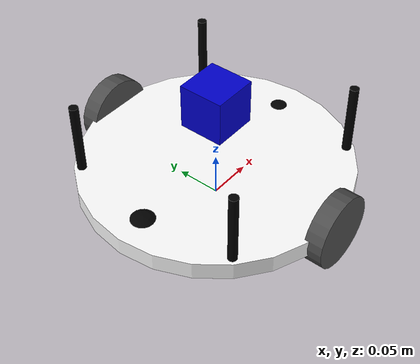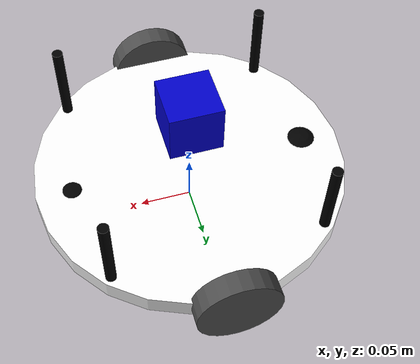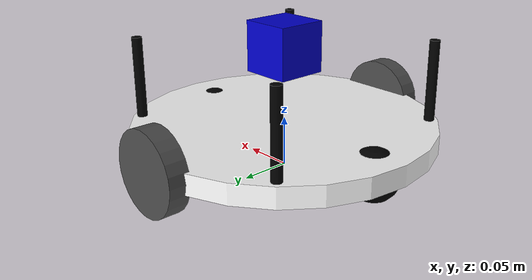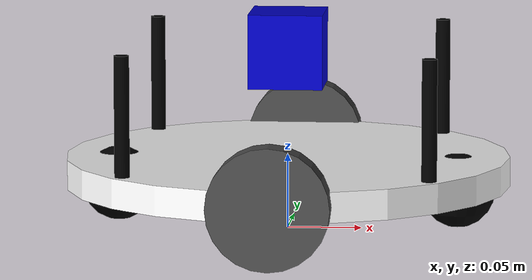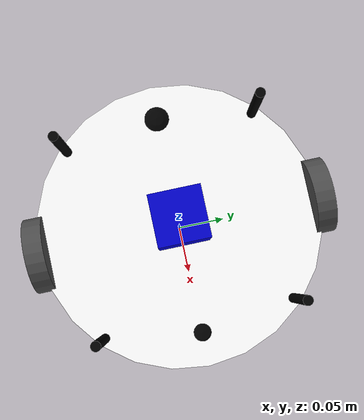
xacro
<?xml version="1.0"?>

<robot name="differential_wheeled_robot"
  xmlns:xacro="http://ros.org/wiki/xacro">

  <xacro:include filename="$(find mastering_ros_robot_description_pkg)/urdf/wheel.urdf.xacro" />

  <!-- Defining the colors used in this robot -->
  <material name="Black">
    <color rgba="0.0 0.0 0.0 1.0"/>
  </material>

  <material name="Red">
    <color rgba="0.8 0.0 0.0 1.0"/>
  </material>

  <material name="White">
    <color rgba="1.0 1.0 1.0 1.0"/>
  </material>

  <material name="Blue">
    <color rgba="0.0 0.0 0.8 1.0"/>
  </material>

  <!-- PROPERTY LIST -->
  <!--All units in m-kg-s-radians unit system -->
  <xacro:property name="M_PI" value="3.1415926535897931" />
  <xacro:property name="M_PI_2" value="1.570796327" />
  <xacro:property name="DEG_TO_RAD" value="0.017453293" />

  <!-- Main body radius and height -->
  <!-- Main Body Cylinder base   -->
  <xacro:property name="base_height" value="0.02" />
  <xacro:property name="base_radius" value="0.15" />
  <xacro:property name="base_mass" value="5.0" />
  <!-- in kg-->

  <!-- caster wheel radius and height -->
  <!-- caster wheel mass -->
  <xacro:property name="caster_f_height" value="0.04" />
  <xacro:property name="caster_f_radius" value="0.025" />
  <xacro:property name="caster_f_mass" value="0.5" />

  <!-- caster wheel radius and height -->
  <!-- caster wheel mass -->
  <xacro:property name="caster_b_height" value="0.04" />
  <xacro:property name="caster_b_radius" value="0.025" />
  <xacro:property name="caster_b_mass" value="0.5" />
  <!-- in kg-->

  <!-- Wheels -->
  <xacro:property name="wheel_mass" value="2.5" />
 -->  <!-- in kg-->
  <xacro:property name="base_x_origin_to_wheel_origin" value="0.25" />
  <xacro:property name="base_y_origin_to_wheel_origin" value="0.3" />
  <xacro:property name="base_z_origin_to_wheel_origin" value="0.0" />

  <!-- Hokuyo Laser scanner -->
  <xacro:property name="hokuyo_size" value="0.05" />

  <!-- 기둥 관련 : 기둥 위치: base_radius-0.02, 기둥 높이: 0.08m, 기둥 반지름: 0.005m -->
  <xacro:property name="pillar_radius" value="0.005" />
  <xacro:property name="pillar_height" value="0.08" />
  <xacro:property name="pillar_offset" value="0.10" />
  <xacro:property name="pillar_mass" value="0.1" />

  <!-- 기둥의 매크로 정의 -->
<xacro:macro name="pillar" params="name x y">
    <link name="${name}">
        <visual>
            <origin xyz="0 0 ${pillar_height/2}" rpy="0 0 0"/>
            <geometry>
                <cylinder length="${pillar_height}" radius="${pillar_radius}"/>
            </geometry>
            <material name="Black"/>
        </visual>
        <collision>
            <origin xyz="0 0 ${pillar_height/2}" rpy="0 0 0"/>
            <geometry>
                <cylinder length="${pillar_height}" radius="${pillar_radius}"/>
            </geometry>
        </collision>
        <inertial>
            <mass value="${pillar_mass}"/>
            <origin xyz="0 0 ${pillar_height/2}"/>
            <inertia ixx="0.001" ixy="0.0" ixz="0.0"
                     iyy="0.0001" iyz="0.0" izz="0.0001"/>
        </inertial>
    </link>
    <joint name="${name}_joint" type="fixed">
        <parent link="base_link"/>
        <child link="${name}"/>
        <origin xyz="${x} ${y} ${base_height/2}" rpy="0 0 0"/>
    </joint>
    <gazebo reference="${name}">
        <material>Gazebo/Black</material>
    </gazebo>
</xacro:macro>

<!-- 기둥 4개 배치(사각형 모서리) -->
<xacro:pillar name="pillar_fl" x=" 0.1"  y=" 0.1"/>  <!-- 앞왼쪽 -->
<xacro:pillar name="pillar_fr" x=" 0.1"  y="-0.1"/>  <!-- 앞오른쪽 -->
<xacro:pillar name="pillar_bl" x="-0.1"  y=" 0.1"/>  <!-- 뒤왼쪽 -->
<xacro:pillar name="pillar_br" x="-0.1"  y="-0.1"/>  <!-- 뒤오른쪽 -->

<!-- Macro for calculating inertia of cylinder -->
<xacro:macro name="cylinder_inertia" params="m r h">
  <inertia ixx="${m*(3*r*r+h*h)/12}" ixy = "0" ixz = "0" iyy="${m*(3*r*r+h*h)/12}" iyz = "0" izz="${m*r*r/2}" />
</xacro:macro>

<!-- BASE-FOOTPRINT -->
<!-- base_footprint is a fictitious link(frame) that is on the ground right below base_link origin -->
<link name="base_footprint">
  <inertial>
    <mass value="0.0001" />
    <origin xyz="0 0 0" />
    <inertia ixx="0.0001" ixy="0.0" ixz="0.0" iyy="0.0001" iyz="0.0" izz="0.0001" />
  </inertial>
  <visual>
    <origin xyz="0 0 0" rpy="0 0 0" />
    <geometry>
      <box size="0.001 0.001 0.001" />
    </geometry>
  </visual>
</link>

<gazebo reference="base_footprint">
  <turnGravityOff>false</turnGravityOff>
</gazebo>

<joint name="base_footprint_joint" type="fixed">
  <origin xyz="0 0 ${wheel_radius - base_z_origin_to_wheel_origin}" rpy="0 0 0" />
  <parent link="base_footprint"/>
  <child link="base_link" />
</joint>

<link name="base_link">
  <inertial>
    <mass value="${base_mass}" />
    <origin xyz="0 0 0" />
    <inertia ixx="0.0001" ixy="0.0" ixz="0.0" iyy="0.0001" iyz="0.0" izz="0.0001" />
    <cylinder_inertia m="${base_mass}" r="${base_radius}" h="${base_height}" />
  </inertial>
  <visual>
    <origin xyz="0 0 0" rpy="0 0 0" />
    <geometry>
      <cylinder length="${base_height}" radius="${base_radius}" />
    </geometry>
    <material name="White" />
  </visual>
  <collision>
    <origin xyz="0 0 0" rpy="0 0 0 " />
    <geometry>
      <cylinder length="${base_height}" radius="${base_radius}" />
    </geometry>
  </collision>
</link>

<gazebo reference="base_link">
  <material>Gazebo/White</material>
  <turnGravityOff>false</turnGravityOff>
</gazebo>

<link name="caster_front_link">
  <visual>
    <origin xyz="0 0.02 0" rpy="${M_PI/2} 0 0" />
    <geometry>
      <sphere radius="${caster_f_radius}" />
    </geometry>
    <material name="Black" />
  </visual>
  <collision>
    <geometry>
      <sphere radius="${caster_f_radius}" />
    </geometry>
    <origin xyz="0 0.02 0" rpy="${M_PI/2} 0 0" />
  </collision>
  <inertial>
    <mass value="${caster_f_mass}" />
    <origin xyz="0 0 0" />
    <inertia ixx="0.001" ixy="0.0" ixz="0.0" iyy="0.001" iyz="0.0" izz="0.001" />
  </inertial>
</link>

<joint name="caster_front_joint" type="fixed">
  <parent link="base_link"/>
  <child link="caster_front_link"/>
  <origin xyz="0.115 0.0 0.007" rpy="${-M_PI/2} 0 0"/>
</joint>

<gazebo reference="caster_front_link">
  <turnGravityOff>false</turnGravityOff>
</gazebo>

<link name="caster_back_link">
  <visual>
    <origin xyz="0.02 0.02 0 " rpy="${M_PI/2} 0 0" />
    <geometry>
      <sphere radius="${caster_b_radius}" />
    </geometry>
    <material name="Black" />
  </visual>
  <collision>
    <geometry>
      <sphere radius="${caster_b_radius}" />
    </geometry>
    <origin xyz="0 0.02 0 " rpy="${M_PI/2} 0 0" />
  </collision>
  <inertial>
    <mass value="${caster_b_mass}" />
    <origin xyz="0 0 0" />
    <inertia ixx="0.001" ixy="0.0" ixz="0.0" iyy="0.001" iyz="0.0" izz="0.001" />
  </inertial>
</link>

<joint name="caster_back_joint" type="fixed">
  <parent link="base_link"/>
  <child link="caster_back_link"/>
  <origin xyz="-0.135 0.0 0.009" rpy="${-M_PI/2} 0 0"/>
</joint>

<gazebo reference="caster_back_link">
  <turnGravityOff>false</turnGravityOff>
</gazebo>

<xacro:wheel fb="front" lr="right" parent="base_link" translateX="0" translateY="-0.5" flipY="1"/>
<xacro:wheel fb="front" lr="left" parent="base_link" translateX="0" translateY="0.5" flipY="1"/>

<gazebo>
  <plugin name="differential_drive_controller" filename="libgazebo_ros_diff_drive.so">
    <legacyMode>true</legacyMode>
    <rosDebugLevel>Debug</rosDebugLevel>
    <publishWheelTF>false</publishWheelTF>
    <robotNamespace>/</robotNamespace>
    <publishTf>1</publishTf>
    <publishWheelJointState>false</publishWheelJointState>
    <alwaysOn>true</alwaysOn>
    <updateRate>100.0</updateRate>
    <leftJoint>front_left_wheel_joint</leftJoint>
    <rightJoint>front_right_wheel_joint</rightJoint>
    <wheelSeparation>${2*base_radius}</wheelSeparation>
    <wheelDiameter>${2*wheel_radius}</wheelDiameter>
    <broadcastTF>1</broadcastTF>
    <wheelTorque>30</wheelTorque>
    <wheelAcceleration>1.8</wheelAcceleration>
    <commandTopic>cmd_vel</commandTopic>
    <odometryFrame>odom</odometryFrame>
    <odometryTopic>odom</odometryTopic>
    <robotBaseFrame>base_footprint</robotBaseFrame>

  </plugin>
</gazebo>

<link name="laser_link">
  <visual>
    <origin xyz="0 0 0" rpy="0 0 0" />
    <geometry>
      <box size="${hokuyo_size} ${hokuyo_size} ${hokuyo_size}"/>
    </geometry>
    <material name="Blue" />
  </visual>
</link>

<joint name="hokuyo_joint" type="fixed">
  <origin xyz="0 0 ${base_height+hokuyo_size/4 + 0.05}" rpy="0 0 0" />
  <parent link="base_link"/>
  <child link="laser_link" />
</joint>

<gazebo reference="laser_link">
  <material>Gazebo/Blue</material>
  <turnGravityOff>false</turnGravityOff>
  <sensor type="ray" name="head_hokuyo_sensor">
    <pose>0 0 0 0 0 0</pose>
    <visualize>true</visualize>
    <update_rate>40</update_rate>
    <ray>
      <scan>
        <horizontal>
          <samples>720</samples>
          <resolution>1</resolution>
          <min_angle>-3.141592</min_angle>
          <max_angle>3.141592</max_angle>
        </horizontal>
      </scan>
      <range>
        <min>0.10</min>
        <max>10.0</max>
        <resolution>0.001</resolution>
      </range>
    </ray>
    <plugin name="gazebo_ros_head_hokuyo_controller" filename="libgazebo_ros_laser.so">
      <topicName>/scan</topicName>
      <frameName>laser_link</frameName>
    </plugin>
  </sensor>
</gazebo>
</robot>

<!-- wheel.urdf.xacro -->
<robot name="wheel" xmlns:xacro="http://www.ros.org/wiki/xacro">

  <!-- Wheels -->
  <property name="wheel_radius" value="0.04" />
  <property name="wheel_height" value="0.02" />
  <property name="wheel_mass" value="2.5" /> <!-- in kg-->

  <property name="base_x_origin_to_wheel_origin" value="0.25" />
  <property name="base_y_origin_to_wheel_origin" value="0.3" />
  <property name="base_z_origin_to_wheel_origin" value="0.0" />

  <macro name="cylinder_inertia" params="m r h">
    <inertia  ixx="${m*(3*r*r+h*h)/12}" ixy = "0" ixz = "0"
              iyy="${m*(3*r*r+h*h)/12}" iyz = "0"
              izz="${m*r*r/2}" />
  </macro>

  <xacro:macro name="wheel" params="fb lr parent translateX translateY flipY"> <!--fb : front, back ; lr: left, right -->
    <link name="${fb}_${lr}_wheel">
      <visual>
        <origin xyz="0 0 0" rpy="${flipY*M_PI/2} 0  0 " />
        <geometry>
          <cylinder length="${wheel_height}" radius="${wheel_radius}" />
        </geometry>
        <material name="DarkGray" />
      </visual>
      <collision>
        <origin xyz="0 0 0" rpy="${flipY*M_PI/2} 0 0 " />
        <geometry>
          <cylinder length="${wheel_height}" radius="${wheel_radius}" />
        </geometry>
      </collision>
      <inertial>
        <mass value="${wheel_mass}" />
        <origin xyz="0 0 0" />
        <cylinder_inertia  m="${wheel_mass}" r="${wheel_radius}" h="${wheel_height}" />
      </inertial>
    </link>

    <gazebo reference="${fb}_${lr}_wheel">
      <mu1 value="1.0"/>
      <mu2 value="1.0"/>
      <kp  value="10000000.0" />
      <kd  value="1.0" />
      <fdir1 value="1 0 0"/>
      <material>Gazebo/Grey</material>
      <turnGravityOff>false</turnGravityOff>
    </gazebo>

    <joint name="${fb}_${lr}_wheel_joint" type="continuous">
      <parent link="${parent}"/>
      <child link="${fb}_${lr}_wheel"/>
      <origin xyz="${translateX * base_x_origin_to_wheel_origin} ${translateY * base_y_origin_to_wheel_origin} ${base_z_origin_to_wheel_origin}" rpy="0 0 0" />
      <axis xyz="0 1 0" rpy="0  0" />
      <limit effort="100" velocity="100"/>
      <joint_properties damping="0.0" friction="0.0"/>
    </joint>

    <!-- Transmission is important to link the joints and the controller -->
    <transmission name="${fb}_${lr}_wheel_joint_trans">
      <type>transmission_interface/SimpleTransmission</type>
      <joint name="${fb}_${lr}_wheel_joint" />
      <actuator name="${fb}_${lr}_wheel_joint_motor">
        <hardwareInterface>EffortJointInterface</hardwareInterface>
        <mechanicalReduction>1</mechanicalReduction>
      </actuator>
    </transmission>

  </xacro:macro>
</robot>
